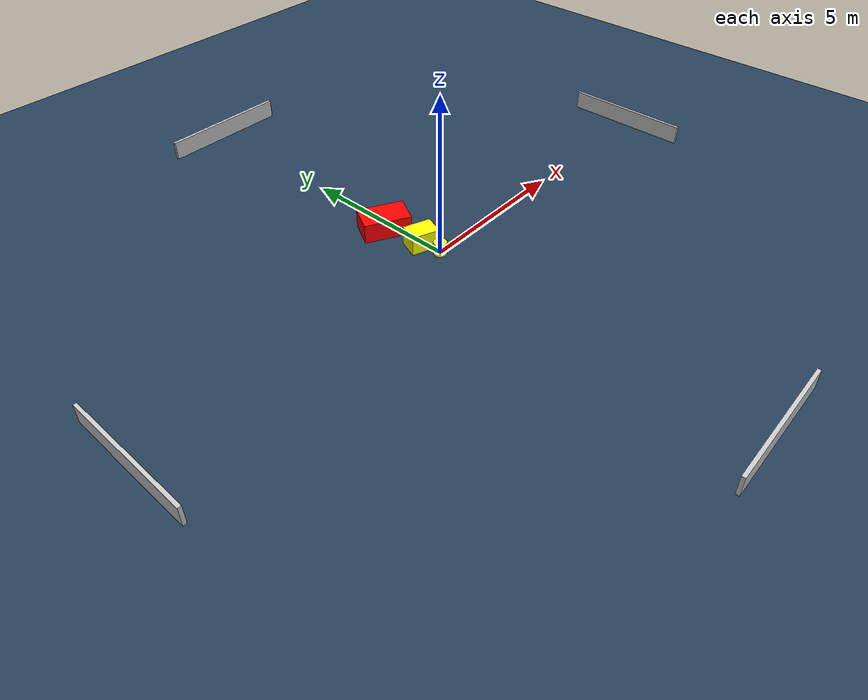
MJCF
<?xml version="1.0" ?>
<mujoco model="generated_environment">
  <option timestep="0.01" integrator="RK4" cone="elliptic"/>
  <default>
    <geom density="1"/>
  </default>
  <asset>
    <texture builtin="gradient" height="3072" name="skybox" rgb1="0.3 0.5 0.7" rgb2="0 0 0" type="skybox" width="512"/>
    <texture builtin="checker" height="300" name="groundplane" rgb1="0.2 0.3 0.4" rgb2="0.1 0.2 0.3" type="2d" width="300"/>
    <material name="groundplane" reflectance="0.2" texrepeat="5 5" texture="groundplane"/>
  </asset>
  <worldbody>
    <light dir="0 0 -1" directional="true" pos="0 0 1.5"/>
    <geom condim="3" friction="0.5 0.005 0.001" material="groundplane" name="floor" pos="0 0 0" size="0 0 0.05" type="plane"/>
    <body name="walls">
      <geom name="wall_1" condim="4" pos="-10.0 0.0 0.3" rgba="0.800000011920929 0.800000011920929 0.800000011920929 1.0" size="0.05 2.0 0.3" type="box"/>
      <geom name="wall_2" condim="4" pos="10.0 0.0 0.3" rgba="0.800000011920929 0.800000011920929 0.800000011920929 1.0" size="0.05 2.0 0.3" type="box"/>
      <geom name="wall_3" condim="4" pos="0.0 -10.0 0.3" rgba="0.800000011920929 0.800000011920929 0.800000011920929 1.0" size="2.0 0.05 0.3" type="box"/>
      <geom name="wall_4" condim="4" pos="0.0 10.0 0.3" rgba="0.800000011920929 0.800000011920929 0.800000011920929 1.0" size="2.0 0.05 0.3" type="box"/>
    </body>
    <body name="robot">
      <joint name="joint_x" type="slide" pos="0 0 0" axis="1 0 0"/>
      <joint name="joint_y" type="slide" pos="0 0 0" axis="0 1 0"/>
      <geom name="robot" type="cylinder" pos="0.0 0.0 0.2" size="0.2 0.2 0.0" mass="5.0" friction="1.0 0.005 0.0001" condim="4" rgba="1.0 1.0 0.0 1.0"/>
    </body>
    <body name="obstacle_1_movable">
      <geom name="obstacle_1_movable" condim="4" pos="-0.08607066185455042 0.6474517703798828 0.3" euler="0 0 339.1718465577508" friction="0.0 0.005 0.001" rgba="1.0 1.0 0.0 1.0" size="0.43273627019176 0.3102217530839815 0.3" type="box" mass="0.1"/>
      <joint type="free"/>
    </body>
    <body name="obstacle_2_static">
      <geom name="obstacle_2_static" condim="4" pos="-0.26120851340167883 1.972204795789044 0.3" euler="0 0 61.33648889637253" friction="0.0 0.005 0.001" rgba="1.0 0.0 0.0 1.0" size="0.4413100565119938 0.7124342643540857 0.3" type="box"/>
    </body>
  </worldbody>
  <actuator>
    <motor name="actuator_x" joint="joint_x" gear="1" ctrlrange="-1 1"/>
    <motor name="actuator_y" joint="joint_y" gear="1" ctrlrange="-1 1"/>
  </actuator>
</mujoco>
